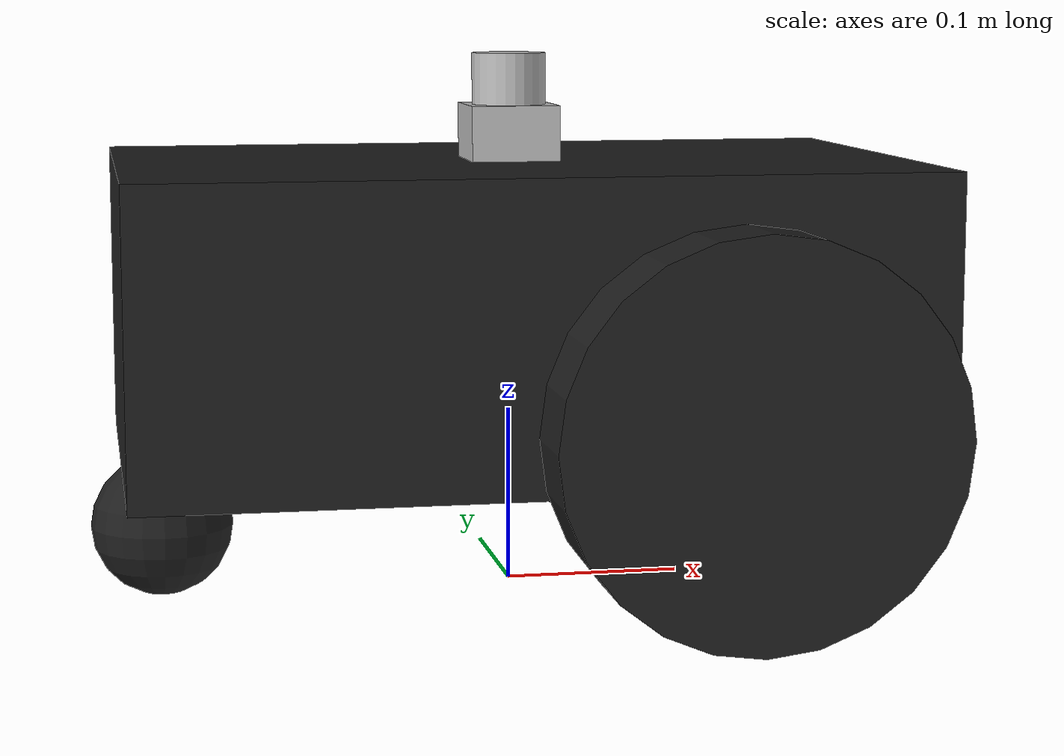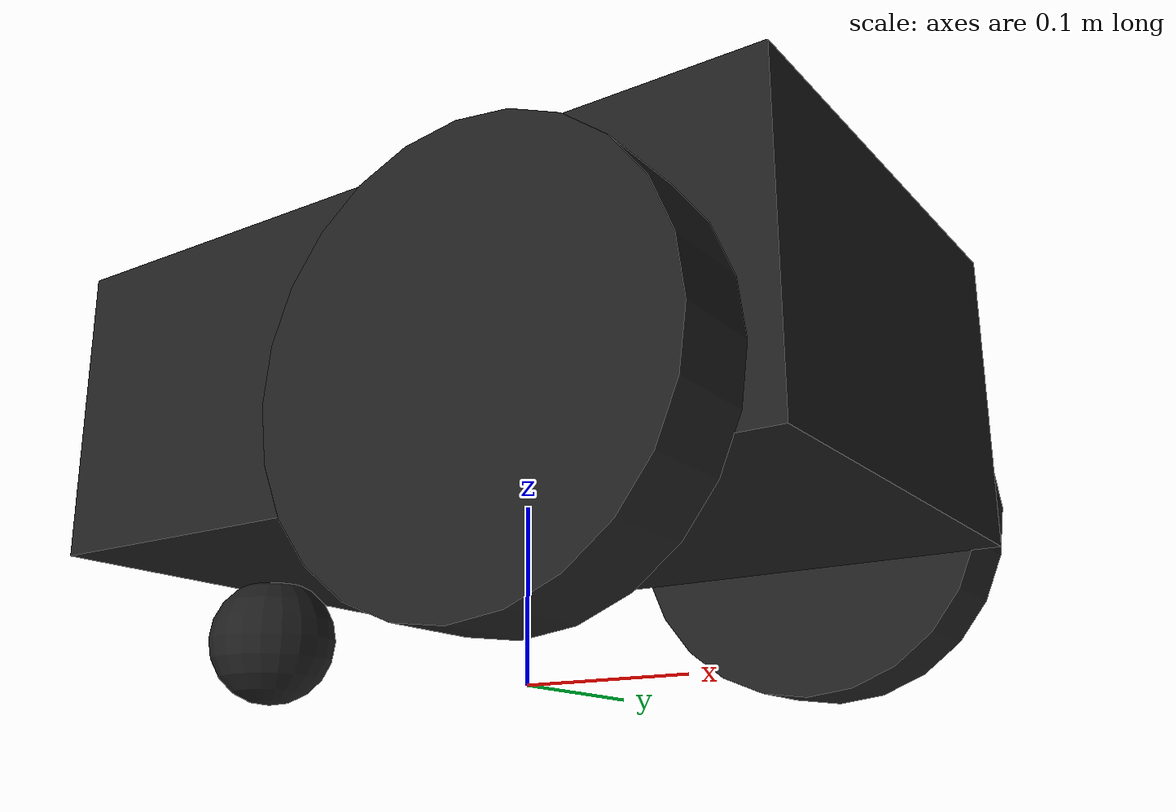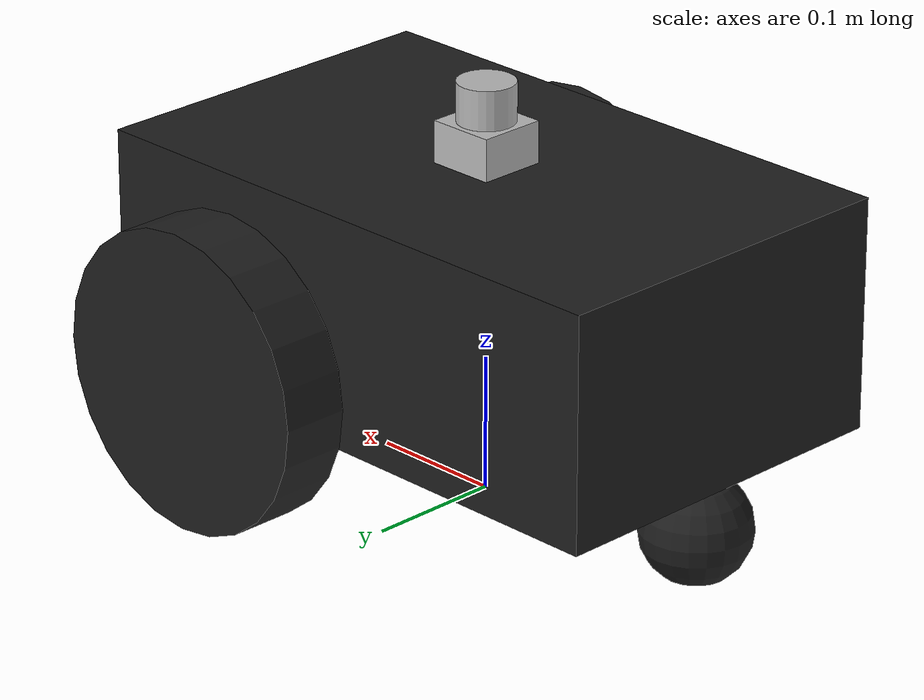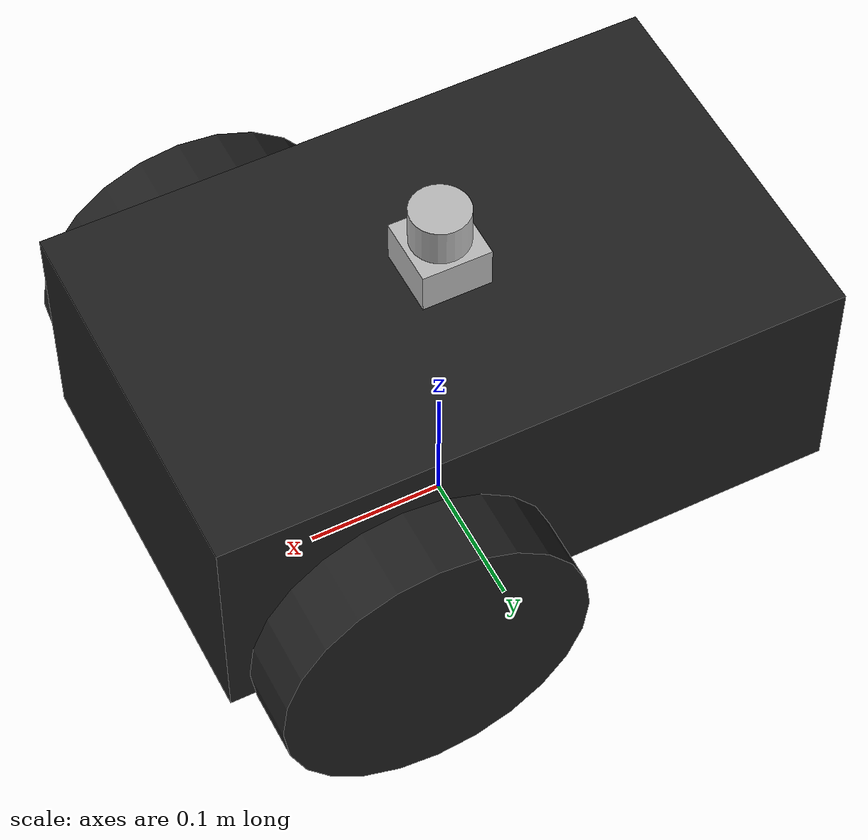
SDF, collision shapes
<?xml version="1.0" ?>
<sdf version="1.5">
  <model name="pioneer2dx">
    <link name="chassis">
      <pose>0 0 0.16 0 0 0</pose>
      <inertial>
        <mass>5.67</mass>
        <inertia>
          <ixx>0.07</ixx>
          <iyy>0.08</iyy>
          <izz>0.10</izz>
          <ixy>0</ixy>
          <ixz>0</ixz>
          <iyz>0</iyz>
        </inertia>
      </inertial>
      <collision name="collision">
        <geometry>
          <box>
            <size>0.445 0.277 0.17</size>
          </box>
        </geometry>
      </collision>
      <collision name="castor_collision">
        <pose>-0.200 0 -0.12 0 0 0</pose>
        <geometry>
          <sphere>
            <radius>0.04</radius>
          </sphere>
        </geometry>
        <surface>
          <friction>
            <ode>
              <mu>0</mu>
              <mu2>0</mu2>
              <slip1>1.0</slip1>
              <slip2>1.0</slip2>
            </ode>
          </friction>
        </surface>
      </collision>
      <visual name="visual">
        <pose>0 0 0.04 0 0 0</pose>
        <geometry>
          <mesh>
            <uri>model://pioneer2dx/meshes/chassis.dae</uri>
          </mesh>
        </geometry>
      </visual>
      <visual name="castor_visual">
        <pose>-0.200 0 -0.12 0 0 0</pose>
        <geometry>
          <sphere>
            <radius>0.04</radius>
          </sphere>
        </geometry>
        <material>
          <script>
            <uri>file://media/materials/scripts/gazebo.material</uri>
            <name>Gazebo/FlatBlack</name>
          </script>
        </material>
      </visual>
    </link>
    <link name="right_wheel">
      <pose>0.1 -.17 0.11 0 1.5707 1.5707</pose>
      <inertial>
        <mass>1.5</mass>
        <inertia>
          <ixx>0.0051</ixx>
          <iyy>0.0051</iyy>
          <izz>0.0090</izz>
          <ixy>0</ixy>
          <ixz>0</ixz>
          <iyz>0</iyz>
        </inertia>
      </inertial>
      <collision name="collision">
        <geometry>
          <cylinder>
            <radius>0.11</radius>
            <length>0.05</length>
          </cylinder>
        </geometry>
        <surface>
          <friction>
            <ode>
              <mu>100000.0</mu>
              <mu2>100000.0</mu2>
              <slip1>0.0</slip1>
              <slip2>0.0</slip2>
            </ode>
          </friction>
        </surface>
      </collision>
      <visual name="visual">
        <geometry>
          <cylinder>
            <radius>0.11</radius>
            <length>0.05</length>
          </cylinder>
        </geometry>
        <material>
          <script>
            <uri>file://media/materials/scripts/gazebo.material</uri>
            <name>Gazebo/FlatBlack</name>
          </script>
        </material>
      </visual>
    </link>
    <link name="left_wheel">
      <pose>0.1 .17 0.11 0 1.5707 1.5707</pose>
      <inertial>
        <mass>1.5</mass>
        <inertia>
          <ixx>0.0051</ixx>
          <iyy>0.0051</iyy>
          <izz>0.0090</izz>
          <ixy>0</ixy>
          <ixz>0</ixz>
          <iyz>0</iyz>
        </inertia>
      </inertial>
      <collision name="collision">
        <geometry>
          <cylinder>
            <radius>0.11</radius>
            <length>0.05</length>
          </cylinder>
        </geometry>
        <surface>
          <friction>
            <ode>
              <mu>100000.0</mu>
              <mu2>100000.0</mu2>
              <slip1>0.0</slip1>
              <slip2>0.0</slip2>
            </ode>
          </friction>
        </surface>
      </collision>
      <visual name="visual">
        <geometry>
          <cylinder>
            <radius>0.11</radius>
            <length>0.05</length>
          </cylinder>
        </geometry>
        <material>
          <script>
            <uri>file://media/materials/scripts/gazebo.material</uri>
            <name>Gazebo/FlatBlack</name>
          </script>
        </material>
      </visual>
    </link>
    <joint type="revolute" name="left_wheel_hinge">
      <pose>0 0 -0.03 0 0 0</pose>
      <child>left_wheel</child>
      <parent>chassis</parent>
      <axis>
        <xyz>0 1 0</xyz>
        <use_parent_model_frame>true</use_parent_model_frame>
      </axis>
    </joint>
    <joint type="revolute" name="right_wheel_hinge">
      <pose>0 0 0.03 0 0 0</pose>
      <child>right_wheel</child>
      <parent>chassis</parent>
      <axis>
        <xyz>0 1 0</xyz>
        <use_parent_model_frame>true</use_parent_model_frame>
      </axis>
    </joint>

    <link name="laser_link">
         <inertial>
           <mass>0.1</mass>
         </inertial>
         <pose>0.0 0 0.27 0 0 0</pose>
         <visual name="visual">
           <geometry>
             <mesh>
               <uri>model://hokuyo/meshes/hokuyo.dae</uri>
             </mesh>
           </geometry>
         </visual>

         <!-- Collision properties of the base of the laser range finder-->
         <collision name="collision-base">
           <pose>0 0 -0.0145 0 0 0</pose>
           <geometry>
             <box>
               <size>0.05 0.05 0.041</size>
             </box>
           </geometry>
         </collision>
         <!-- Collision properties of the top of the laser range finder-->
         <collision name="collision-top">
           <pose>0 0 0.0205 0 0 0</pose>
           <geometry>
             <cylinder>
               <radius>0.021</radius>
               <length>0.029</length>
             </cylinder>
           </geometry>
         </collision>

              <!-- Describes the type and properties of the sensor -->
        <sensor name="laser" type="ray">
          <pose>0.01 0 0.0175 0 -0 0</pose>
                <ray>
                  <scan>
                    <horizontal>
                      <samples>181</samples>
                      <resolution>1</resolution>
                      <min_angle>-2.356195</min_angle>
                      <max_angle>2.356195</max_angle>
                    </horizontal>
                  </scan>
                  <range>
                    <min>0.08</min>
                    <max>1</max>
                    <resolution>0.05</resolution>
                  </range>
                </ray>
                <always_on>1</always_on>
                <update_rate>10</update_rate>
                <visualize>true</visualize>

                <plugin name='laser' filename='libgazebo_ros_ray_sensor.so'>
                  <ros>
                    <namespace>/robot1</namespace>
                    <argument>--ros-args --remap ~/out:=scan</argument>
                  </ros>
                  <output_type>sensor_msgs/LaserScan</output_type>
                </plugin>
        </sensor>
       </link>
       <joint name="laser_joint" type="fixed">
        <child>laser_link</child>
        <parent>chassis</parent>
       </joint>

    <link name='ultrasonic_link'>
            <sensor name="ultrasonic_1" type="ray">
              <pose>0 0 .34 0 0 0</pose>
              <always_on>true</always_on>
              <visualize>true</visualize>
              <update_rate>5</update_rate>
              <ray>
                  <scan>
                    <horizontal>
                      <samples>8</samples>
                      <resolution>1</resolution>
                      <min_angle>-3.1414</min_angle>
                      <max_angle>3.1414</max_angle>
                    </horizontal>
                  </scan>
                  <range>
                    <min>0.08</min>
                    <max>1</max>
                    <resolution>0.05</resolution>
                  </range>
                </ray>
              <plugin name="ultrasonic_sensor_1" filename="libgazebo_ros_ray_sensor.so">
                <ros>
                  <namespace>/robot1</namespace>
                  <remapping>~/out:=ultrasonic_sensor_1</remapping>
                </ros>
                <output_type>sensor_msgs/LaserScan</output_type>
              </plugin>
            </sensor>
          </link>
        <joint name="chassis2joint" type="fixed">
        <child>ultrasonic_link</child>
        <parent>chassis</parent>
        </joint>

    <plugin name='diff_drive' filename='libgazebo_ros_diff_drive.so'>
         <ros>
           <namespace>/robot1</namespace>
           <remapping>cmd_vel:=cmd_vel</remapping>
           <remapping>odom:=odom</remapping>
         </ros>

         <!-- wheels -->
         <left_joint>left_wheel_hinge</left_joint>
         <right_joint>right_wheel_hinge</right_joint>

         <!-- kinematics -->
         <wheel_separation>0.34</wheel_separation>
         <wheel_diameter>0.22</wheel_diameter>

         <!-- limits -->

         <!-- output -->
         <publish_odom>true</publish_odom>
         <publish_odom_tf>true</publish_odom_tf>
         <publish_wheel_tf>true</publish_wheel_tf>

         <odometry_frame>odom</odometry_frame>
         <robot_base_frame>chassis</robot_base_frame>
       </plugin>

  </model>
</sdf>
